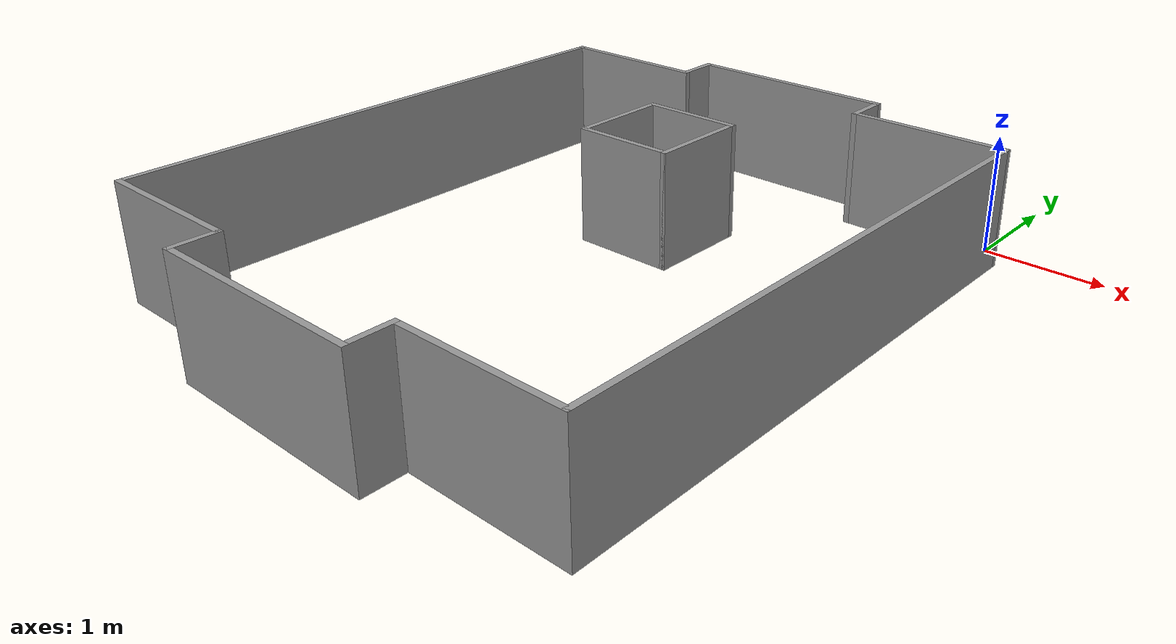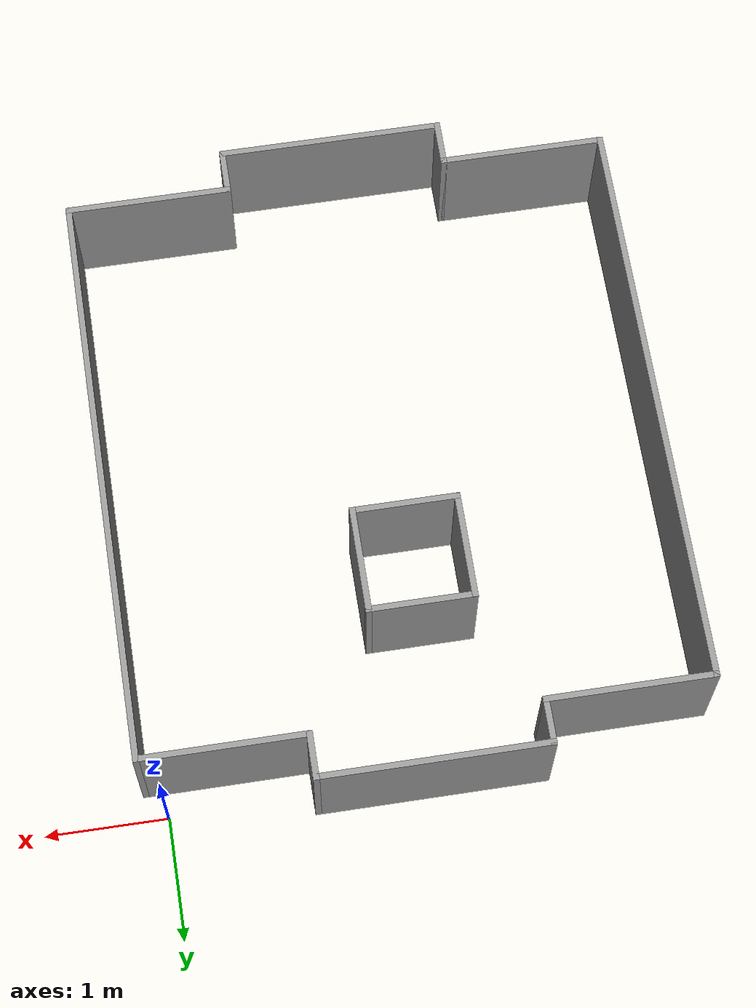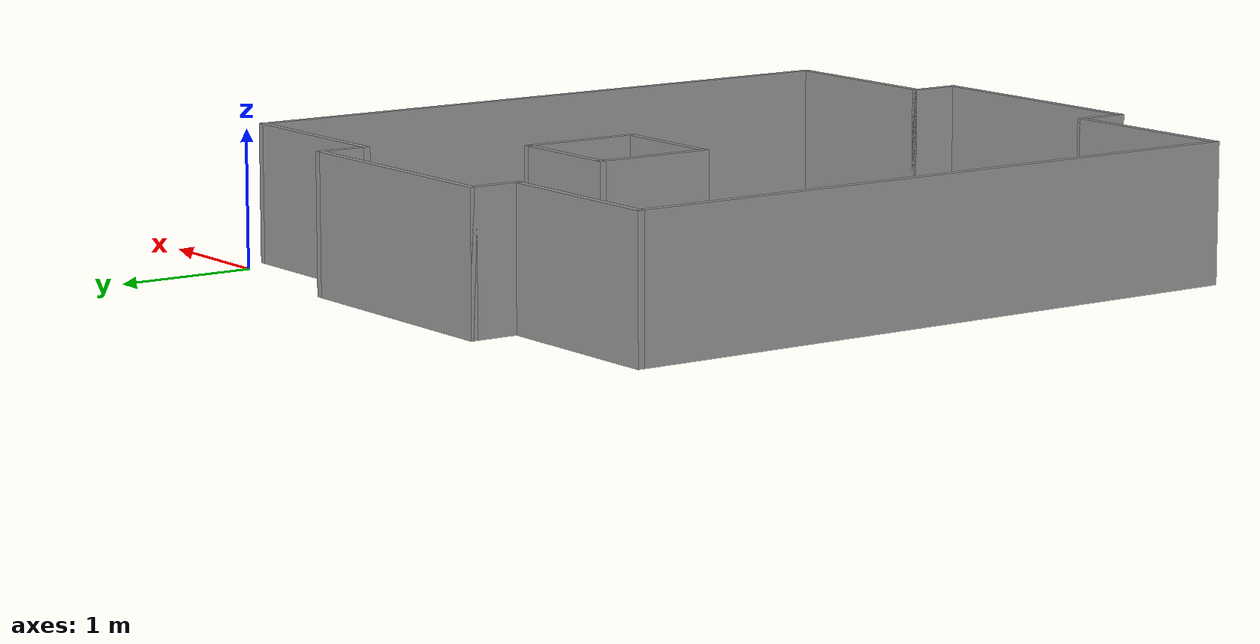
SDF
<?xml version='1.0'?>
<sdf version='1.6'>
  <model name='rgarena2-0'>
    <pose frame=''>-2.116 -2.655 0 0 -0 0</pose>
    <link name='Wall_0'>
      <collision name='Wall_0_Collision'>
        <geometry>
          <box>
            <size>4.9 0.05 1</size>
          </box>
        </geometry>
        <pose frame=''>0 0 0.5 0 -0 0</pose>
      </collision>
      <visual name='Wall_0_Visual'>
        <pose frame=''>0 0 0.5 0 -0 0</pose>
        <geometry>
          <box>
            <size>4.9 0.05 1</size>
          </box>
        </geometry>
        <material>
          <script>
            <uri>file://media/materials/scripts/gazebo.material</uri>
            <name>Gazebo/Grey</name>
          </script>
          <ambient>1 1 1 1</ambient>
        </material>
        <meta>
          <layer>0</layer>
        </meta>
      </visual>
      <pose frame=''>-2.275 -0 0 0 -0 -1.5708</pose>
    </link>
    <link name='Wall_1'>
      <collision name='Wall_1_Collision'>
        <geometry>
          <box>
            <size>1.4 0.05 1</size>
          </box>
        </geometry>
        <pose frame=''>0 0 0.5 0 -0 0</pose>
      </collision>
      <visual name='Wall_1_Visual'>
        <pose frame=''>0 0 0.5 0 -0 0</pose>
        <geometry>
          <box>
            <size>1.4 0.05 1</size>
          </box>
        </geometry>
        <material>
          <script>
            <uri>file://media/materials/scripts/gazebo.material</uri>
            <name>Gazebo/Grey</name>
          </script>
          <ambient>1 1 1 1</ambient>
        </material>
        <meta>
          <layer>0</layer>
        </meta>
      </visual>
      <pose frame=''>-1.6 -2.425 0 0 -0 0</pose>
    </link>
    <link name='Wall_13'>
      <collision name='Wall_13_Collision'>
        <geometry>
          <box>
            <size>1.9 0.05 1</size>
          </box>
        </geometry>
        <pose frame=''>0 0 0.5 0 -0 0</pose>
      </collision>
      <visual name='Wall_13_Visual'>
        <pose frame=''>0 0 0.5 0 -0 0</pose>
        <geometry>
          <box>
            <size>1.9 0.05 1</size>
          </box>
        </geometry>
        <material>
          <script>
            <uri>file://media/materials/scripts/gazebo.material</uri>
            <name>Gazebo/Grey</name>
          </script>
          <ambient>1 1 1 1</ambient>
        </material>
        <meta>
          <layer>0</layer>
        </meta>
      </visual>
      <pose frame=''>-0 2.775 0 0 -0 3.14159</pose>
    </link>
    <link name='Wall_14'>
      <collision name='Wall_14_Collision'>
        <geometry>
          <box>
            <size>0.4 0.05 1</size>
          </box>
        </geometry>
        <pose frame=''>0 0 0.5 0 -0 0</pose>
      </collision>
      <visual name='Wall_14_Visual'>
        <pose frame=''>0 0 0.5 0 -0 0</pose>
        <geometry>
          <box>
            <size>0.4 0.05 1</size>
          </box>
        </geometry>
        <material>
          <script>
            <uri>file://media/materials/scripts/gazebo.material</uri>
            <name>Gazebo/Grey</name>
          </script>
          <ambient>1 1 1 1</ambient>
        </material>
        <meta>
          <layer>0</layer>
        </meta>
      </visual>
      <pose frame=''>-0.925 2.6 0 0 -0 -1.5708</pose>
    </link>
    <link name='Wall_15'>
      <collision name='Wall_15_Collision'>
        <geometry>
          <box>
            <size>1.4 0.05 1</size>
          </box>
        </geometry>
        <pose frame=''>0 0 0.5 0 -0 0</pose>
      </collision>
      <visual name='Wall_15_Visual'>
        <pose frame=''>0 0 0.5 0 -0 0</pose>
        <geometry>
          <box>
            <size>1.4 0.05 1</size>
          </box>
        </geometry>
        <material>
          <script>
            <uri>file://media/materials/scripts/gazebo.material</uri>
            <name>Gazebo/Grey</name>
          </script>
          <ambient>1 1 1 1</ambient>
        </material>
        <meta>
          <layer>0</layer>
        </meta>
      </visual>
      <pose frame=''>-1.6 2.425 0 0 -0 3.14159</pose>
    </link>
    <link name='Wall_17'>
      <collision name='Wall_17_Collision'>
        <geometry>
          <box>
            <size>0.9 0.05 1</size>
          </box>
        </geometry>
        <pose frame=''>0 0 0.5 0 -0 0</pose>
      </collision>
      <visual name='Wall_17_Visual'>
        <pose frame=''>0 0 0.5 0 -0 0</pose>
        <geometry>
          <box>
            <size>0.9 0.05 1</size>
          </box>
        </geometry>
        <material>
          <script>
            <uri>file://media/materials/scripts/gazebo.material</uri>
            <name>Gazebo/Grey</name>
          </script>
          <ambient>1 1 1 1</ambient>
        </material>
        <meta>
          <layer>0</layer>
        </meta>
      </visual>
      <pose frame=''>-0.529 1.061 0 0 -0 -1.5708</pose>
    </link>
    <link name='Wall_18'>
      <collision name='Wall_18_Collision'>
        <geometry>
          <box>
            <size>0.9 0.05 1</size>
          </box>
        </geometry>
        <pose frame=''>0 0 0.5 0 -0 0</pose>
      </collision>
      <visual name='Wall_18_Visual'>
        <pose frame=''>0 0 0.5 0 -0 0</pose>
        <geometry>
          <box>
            <size>0.9 0.05 1</size>
          </box>
        </geometry>
        <material>
          <script>
            <uri>file://media/materials/scripts/gazebo.material</uri>
            <name>Gazebo/Grey</name>
          </script>
          <ambient>1 1 1 1</ambient>
        </material>
        <meta>
          <layer>0</layer>
        </meta>
      </visual>
      <pose frame=''>-0.104 0.636 0 0 -0 0</pose>
    </link>
    <link name='Wall_19'>
      <collision name='Wall_19_Collision'>
        <geometry>
          <box>
            <size>0.9 0.05 1</size>
          </box>
        </geometry>
        <pose frame=''>0 0 0.5 0 -0 0</pose>
      </collision>
      <visual name='Wall_19_Visual'>
        <pose frame=''>0 0 0.5 0 -0 0</pose>
        <geometry>
          <box>
            <size>0.9 0.05 1</size>
          </box>
        </geometry>
        <material>
          <script>
            <uri>file://media/materials/scripts/gazebo.material</uri>
            <name>Gazebo/Grey</name>
          </script>
          <ambient>1 1 1 1</ambient>
        </material>
        <meta>
          <layer>0</layer>
        </meta>
      </visual>
      <pose frame=''>0.321 1.061 0 0 -0 1.5708</pose>
    </link>
    <link name='Wall_2'>
      <collision name='Wall_2_Collision'>
        <geometry>
          <box>
            <size>0.4 0.05 1</size>
          </box>
        </geometry>
        <pose frame=''>0 0 0.5 0 -0 0</pose>
      </collision>
      <visual name='Wall_2_Visual'>
        <pose frame=''>0 0 0.5 0 -0 0</pose>
        <geometry>
          <box>
            <size>0.4 0.05 1</size>
          </box>
        </geometry>
        <material>
          <script>
            <uri>file://media/materials/scripts/gazebo.material</uri>
            <name>Gazebo/Grey</name>
          </script>
          <ambient>1 1 1 1</ambient>
        </material>
        <meta>
          <layer>0</layer>
        </meta>
      </visual>
      <pose frame=''>-0.925 -2.6 0 0 -0 -1.5708</pose>
    </link>
    <link name='Wall_20'>
      <collision name='Wall_20_Collision'>
        <geometry>
          <box>
            <size>0.9003 0.05 1</size>
          </box>
        </geometry>
        <pose frame=''>0 0 0.5 0 -0 0</pose>
      </collision>
      <visual name='Wall_20_Visual'>
        <pose frame=''>0 0 0.5 0 -0 0</pose>
        <geometry>
          <box>
            <size>0.9003 0.05 1</size>
          </box>
        </geometry>
        <material>
          <script>
            <uri>file://media/materials/scripts/gazebo.material</uri>
            <name>Gazebo/Grey</name>
          </script>
          <ambient>1 1 1 1</ambient>
        </material>
        <meta>
          <layer>0</layer>
        </meta>
      </visual>
      <pose frame=''>-0.104 1.486 0 0 -0 3.14159</pose>
    </link>
    <link name='Wall_3'>
      <collision name='Wall_3_Collision'>
        <geometry>
          <box>
            <size>1.9 0.05 1</size>
          </box>
        </geometry>
        <pose frame=''>0 0 0.5 0 -0 0</pose>
      </collision>
      <visual name='Wall_3_Visual'>
        <pose frame=''>0 0 0.5 0 -0 0</pose>
        <geometry>
          <box>
            <size>1.9 0.05 1</size>
          </box>
        </geometry>
        <material>
          <script>
            <uri>file://media/materials/scripts/gazebo.material</uri>
            <name>Gazebo/Grey</name>
          </script>
          <ambient>1 1 1 1</ambient>
        </material>
        <meta>
          <layer>0</layer>
        </meta>
      </visual>
      <pose frame=''>-0 -2.775 0 0 -0 0</pose>
    </link>
    <link name='Wall_4'>
      <collision name='Wall_4_Collision'>
        <geometry>
          <box>
            <size>0.4 0.05 1</size>
          </box>
        </geometry>
        <pose frame=''>0 0 0.5 0 -0 0</pose>
      </collision>
      <visual name='Wall_4_Visual'>
        <pose frame=''>0 0 0.5 0 -0 0</pose>
        <geometry>
          <box>
            <size>0.4 0.05 1</size>
          </box>
        </geometry>
        <material>
          <script>
            <uri>file://media/materials/scripts/gazebo.material</uri>
            <name>Gazebo/Grey</name>
          </script>
          <ambient>1 1 1 1</ambient>
        </material>
        <meta>
          <layer>0</layer>
        </meta>
      </visual>
      <pose frame=''>0.925 -2.6 0 0 -0 1.5708</pose>
    </link>
    <link name='Wall_5'>
      <collision name='Wall_5_Collision'>
        <geometry>
          <box>
            <size>1.4 0.05 1</size>
          </box>
        </geometry>
        <pose frame=''>0 0 0.5 0 -0 0</pose>
      </collision>
      <visual name='Wall_5_Visual'>
        <pose frame=''>0 0 0.5 0 -0 0</pose>
        <geometry>
          <box>
            <size>1.4 0.05 1</size>
          </box>
        </geometry>
        <material>
          <script>
            <uri>file://media/materials/scripts/gazebo.material</uri>
            <name>Gazebo/Grey</name>
          </script>
          <ambient>1 1 1 1</ambient>
        </material>
        <meta>
          <layer>0</layer>
        </meta>
      </visual>
      <pose frame=''>1.6 -2.425 0 0 -0 0</pose>
    </link>
    <link name='Wall_6'>
      <collision name='Wall_6_Collision'>
        <geometry>
          <box>
            <size>4.9 0.05 1</size>
          </box>
        </geometry>
        <pose frame=''>0 0 0.5 0 -0 0</pose>
      </collision>
      <visual name='Wall_6_Visual'>
        <pose frame=''>0 0 0.5 0 -0 0</pose>
        <geometry>
          <box>
            <size>4.9 0.05 1</size>
          </box>
        </geometry>
        <material>
          <script>
            <uri>file://media/materials/scripts/gazebo.material</uri>
            <name>Gazebo/Grey</name>
          </script>
          <ambient>1 1 1 1</ambient>
        </material>
        <meta>
          <layer>0</layer>
        </meta>
      </visual>
      <pose frame=''>2.275 -0 0 0 -0 1.5708</pose>
    </link>
    <link name='Wall_7'>
      <collision name='Wall_7_Collision'>
        <geometry>
          <box>
            <size>1.4 0.05 1</size>
          </box>
        </geometry>
        <pose frame=''>0 0 0.5 0 -0 0</pose>
      </collision>
      <visual name='Wall_7_Visual'>
        <pose frame=''>0 0 0.5 0 -0 0</pose>
        <geometry>
          <box>
            <size>1.4 0.05 1</size>
          </box>
        </geometry>
        <material>
          <script>
            <uri>file://media/materials/scripts/gazebo.material</uri>
            <name>Gazebo/Grey</name>
          </script>
          <ambient>1 1 1 1</ambient>
        </material>
        <meta>
          <layer>0</layer>
        </meta>
      </visual>
      <pose frame=''>1.6 2.425 0 0 -0 3.14159</pose>
    </link>
    <link name='Wall_9'>
      <collision name='Wall_9_Collision'>
        <geometry>
          <box>
            <size>0.4 0.05 1</size>
          </box>
        </geometry>
        <pose frame=''>0 0 0.5 0 -0 0</pose>
      </collision>
      <visual name='Wall_9_Visual'>
        <pose frame=''>0 0 0.5 0 -0 0</pose>
        <geometry>
          <box>
            <size>0.4 0.05 1</size>
          </box>
        </geometry>
        <material>
          <script>
            <uri>file://media/materials/scripts/gazebo.material</uri>
            <name>Gazebo/Grey</name>
          </script>
          <ambient>1 1 1 1</ambient>
        </material>
        <meta>
          <layer>0</layer>
        </meta>
      </visual>
      <pose frame=''>0.925 2.6 0 0 -0 1.5708</pose>
    </link>
    <static>1</static>
  </model>
</sdf>
